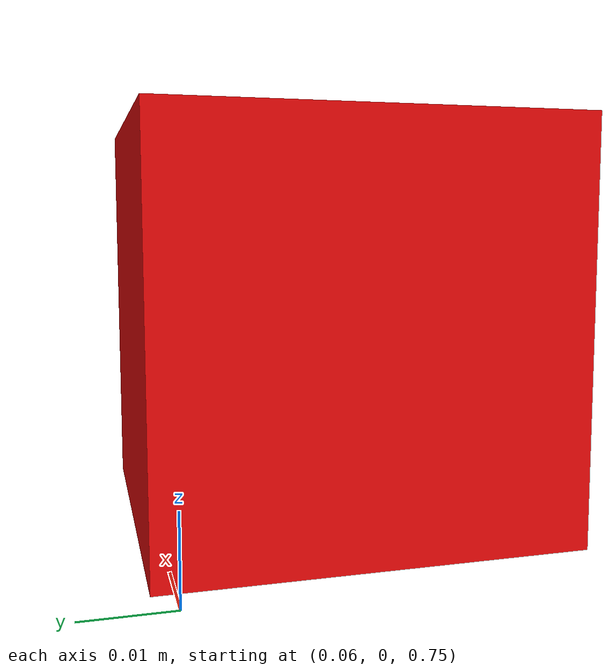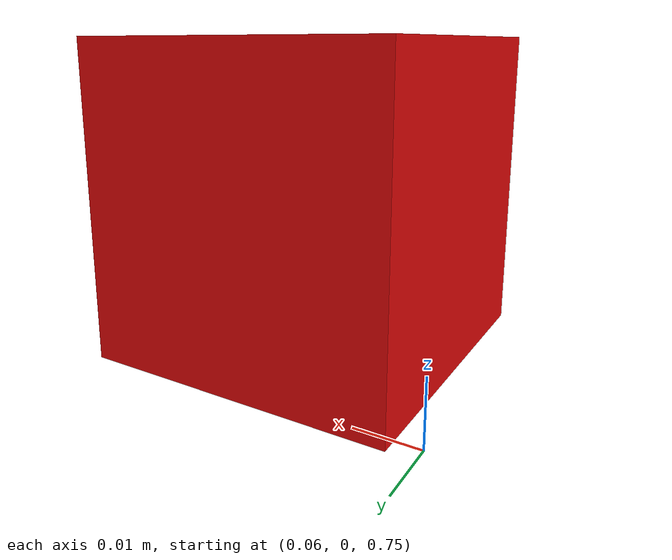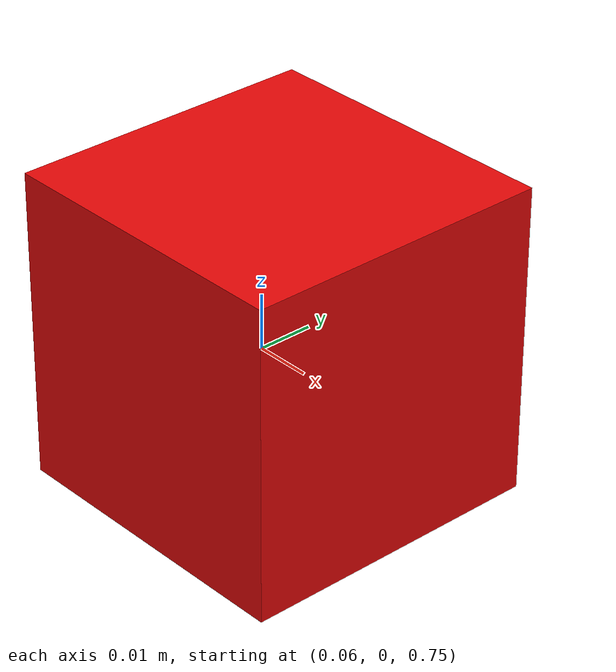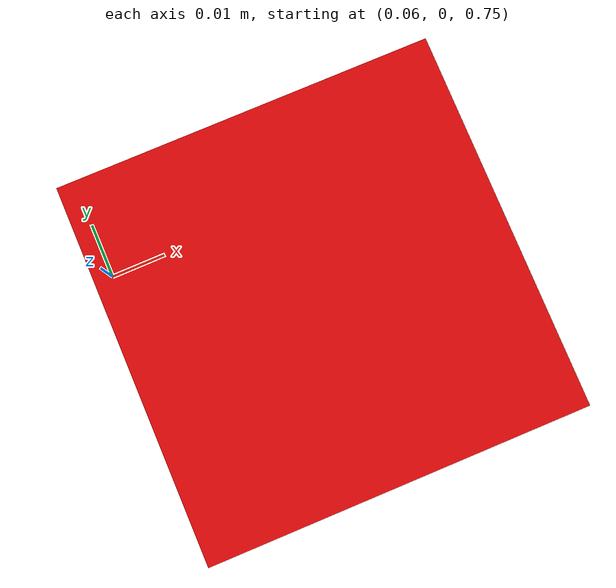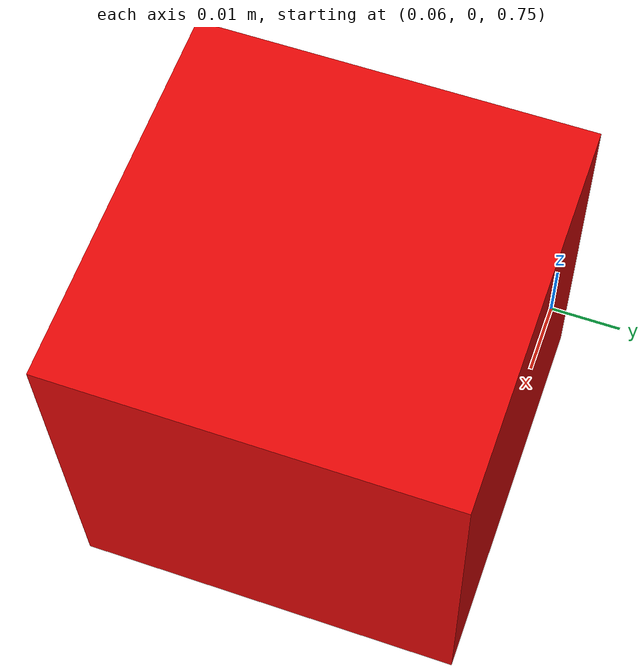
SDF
<?xml version='1.0' encoding='utf-8'?>
<sdf version="1.9"><model name="wood_block">
      <pose>0.089055 -0.022389 0.774992 -0 0 -0</pose>
      <link name="block_link">
        <inertial>
          <mass>0.024327999999999999</mass>
          <inertia>
            <ixx>1.0136700000000001e-05</ixx>
            <iyy>1.0136700000000001e-05</iyy>
            <izz>1.0136700000000001e-05</izz>
            <ixy>0</ixy>
            <ixz>0</ixz>
            <iyz>0</iyz>
          </inertia>
          <pose>0 0 0 0 -0 0</pose>
        </inertial>
        <collision name="block_collision">
          <geometry>
            <box>
              <size>0.05 0.05 0.05</size>
            </box>
          </geometry>
          <max_contacts>20</max_contacts>
          <surface>
            <friction>
              <ode>
                <mu>5.5897382030915308</mu>
                <mu2>6.2376799028659615</mu2>
                <slip1>0</slip1>
                <slip2>0</slip2>
              </ode>
            </friction>
            <contact>
              <collide_without_contact>false</collide_without_contact>
              <poissons_ratio>0.34999999999999998</poissons_ratio>
              <elastic_modulus>100000000</elastic_modulus>
              <ode>
                <kp>100000</kp>
                <kd>10</kd>
                <max_vel>0.02</max_vel>
                <min_depth>0.0001</min_depth>
              </ode>
            </contact>
            <bounce />
          </surface>
        </collision>
        <visual name="block_visual">
          <geometry>
            <box>
              <size>0.05 0.05 0.05</size>
            </box>
          </geometry>
          <material>
            <ambient>0.45 0.01 0.01 1</ambient>
            <diffuse>0.9 0.03 0.03 1</diffuse>
            <specular>0.06 0.04 0.04 1</specular>
            <emissive>0 0 0 1</emissive>
          </material>
        </visual>
        <sensor name="day3_v5_block_contact" type="contact">
          <always_on>true</always_on>
          <update_rate>125</update_rate>
          <visualize>false</visualize>
          <topic>/day3_v5/block/contacts</topic>
          <contact>
            <collision>block_collision</collision>
            <topic>__default_topic__</topic>
          </contact>
        </sensor>
        <pose>0 0 0 0 -0 0</pose>
        <enable_wind>false</enable_wind>
      </link>
      <plugin name="ignition::gazebo::systems::OdometryPublisher" filename="ignition-gazebo-odometry-publisher-system">
        <dimensions>3</dimensions>
        <odom_publish_frequency>50</odom_publish_frequency>
        <odom_topic>/day3_v5/block/odometry</odom_topic>
        <odom_frame>world</odom_frame>
        <robot_base_frame>block_link</robot_base_frame>
        <tf_topic>/day3_v5/block/odometry_tf</tf_topic>
      </plugin>
      <static>false</static>
      <self_collide>false</self_collide>
    </model>
    </sdf>
